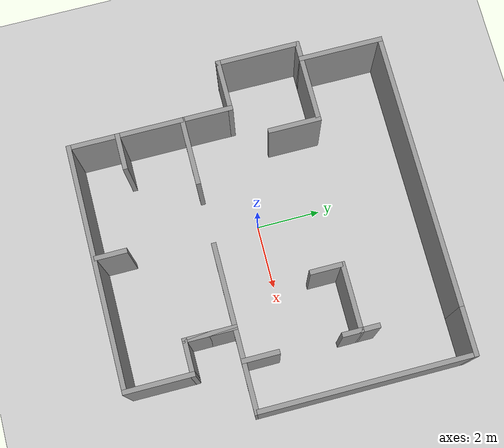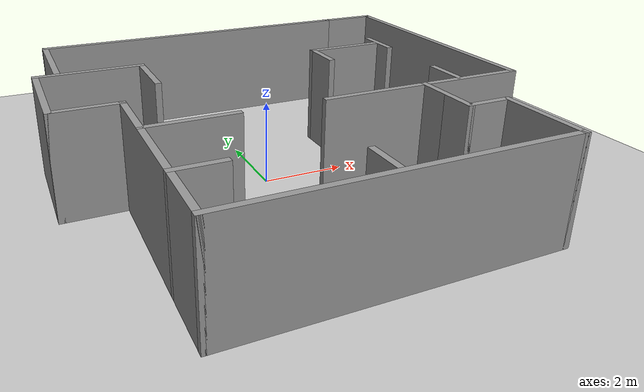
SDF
<sdf version="1.7">
 <world name="default">
  <light name="sun" type="directional">
   <pose>0 0 10 0 -0 0</pose>
   <diffuse>0.8 0.8 0.8 1</diffuse>
   <specular>0.2 0.2 0.2 1</specular>
   <attenuation>
    <range>1000</range>
    <constant>0.9</constant>
    <linear>0.01</linear>
    <quadratic>0.001</quadratic>
   </attenuation>
   <direction>-0.5 0.1 -0.9</direction>
   <spot><inner_angle>0</inner_angle><outer_angle>0</outer_angle><falloff>0</falloff></spot>
  </light>
  <model name="ground_plane">
   <static>1</static>
   <link name="link">
    <collision name="collision">
     <geometry><plane><normal>0 0 1</normal><size>100 100</size></plane></geometry>
     <surface><friction><ode><mu>100</mu><mu2>50</mu2></ode></friction></surface>
    </collision>
    <visual name="visual">
     <cast_shadows>0</cast_shadows>
     <geometry><plane><normal>0 0 1</normal><size>100 100</size></plane></geometry>
     <material>
      <script><uri>file://media/materials/scripts/gazebo.material</uri><name>Gazebo/Grey</name></script>
     </material>
    </visual>
   </link>
  </model>
  <gravity>0 0 -9.8</gravity>
  <magnetic_field>6e-06 2.3e-05 -4.2e-05</magnetic_field>
  <atmosphere type="adiabatic"/>
  <physics type="ode">
   <max_step_size>0.001</max_step_size>
   <real_time_factor>1</real_time_factor>
   <real_time_update_rate>1000</real_time_update_rate>
  </physics>
  <scene><ambient>0.4 0.4 0.4 1</ambient><background>0.7 0.7 0.7 1</background><shadows>1</shadows></scene>
  <spherical_coordinates>
   <surface_model>EARTH_WGS84</surface_model>
   <latitude_deg>0</latitude_deg>
   <longitude_deg>0</longitude_deg>
   <elevation>0</elevation>
   <heading_deg>0</heading_deg>
  </spherical_coordinates>
  <model name="room1">
   <pose>0.5 0 0 0 -0 0</pose>
   <link name="Wall_0">
    <collision name="Wall_0_Collision">
     <geometry><box><size>2.65 0.15 2.5</size></box></geometry>
     <pose>0 0 1.25 0 -0 0</pose>
    </collision>
    <visual name="Wall_0_Visual">
     <pose>0 0 1.25 0 -0 0</pose>
     <geometry><box><size>2.65 0.15 2.5</size></box></geometry>
     <material>
      <script><uri>file://media/materials/scripts/gazebo.material</uri><name>Gazebo/Grey</name></script>
      <ambient>1 1 1 1</ambient>
     </material>
     <meta><layer>0</layer></meta>
    </visual>
    <pose>-5.25 1.25 0 0 -0 1.5708</pose>
   </link>
   <link name="Wall_10">
    <collision name="Wall_10_Collision">
     <geometry><box><size>1.65 0.15 2.5</size></box></geometry>
     <pose>0 0 1.25 0 -0 0</pose>
    </collision>
    <visual name="Wall_10_Visual">
     <pose>0 0 1.25 0 -0 0</pose>
     <geometry><box><size>1.65 0.15 2.5</size></box></geometry>
     <material>
      <script><uri>file://media/materials/scripts/gazebo.material</uri><name>Gazebo/Grey</name></script>
      <ambient>1 1 1 1</ambient>
     </material>
     <meta><layer>0</layer></meta>
    </visual>
    <pose>2.75 -2.25 0 0 -0 1.5708</pose>
   </link>
   <link name="Wall_11">
    <collision name="Wall_11_Collision">
     <geometry><box><size>1.65 0.15 2.5</size></box></geometry>
     <pose>0 0 1.25 0 -0 0</pose>
    </collision>
    <visual name="Wall_11_Visual">
     <pose>0 0 1.25 0 -0 0</pose>
     <geometry><box><size>1.65 0.15 2.5</size></box></geometry>
     <material>
      <script><uri>file://media/materials/scripts/gazebo.material</uri><name>Gazebo/Grey</name></script>
      <ambient>1 1 1 1</ambient>
     </material>
     <meta><layer>0</layer></meta>
    </visual>
    <pose>2.75 -2.25 0 0 -0 -1.5708</pose>
   </link>
   <link name="Wall_13">
    <collision name="Wall_13_Collision">
     <geometry><box><size>1.15 0.15 2.5</size></box></geometry>
     <pose>0 0 1.25 0 -0 0</pose>
    </collision>
    <visual name="Wall_13_Visual">
     <pose>0 0 1.25 0 -0 0</pose>
     <geometry><box><size>1.15 0.15 2.5</size></box></geometry>
     <material>
      <script><uri>file://media/materials/scripts/gazebo.material</uri><name>Gazebo/Grey</name></script>
      <ambient>1 1 1 1</ambient>
     </material>
     <meta><layer>0</layer></meta>
    </visual>
    <pose>3.25 -3 0 0 -0 3.14159</pose>
   </link>
   <link name="Wall_15">
    <collision name="Wall_15_Collision">
     <geometry><box><size>5.15 0.15 2.5</size></box></geometry>
     <pose>0 0 1.25 0 -0 0</pose>
    </collision>
    <visual name="Wall_15_Visual">
     <pose>0 0 1.25 0 -0 0</pose>
     <geometry><box><size>5.15 0.15 2.5</size></box></geometry>
     <material>
      <script><uri>file://media/materials/scripts/gazebo.material</uri><name>Gazebo/Grey</name></script>
      <ambient>1 1 1 1</ambient>
     </material>
     <meta><layer>0</layer></meta>
    </visual>
    <pose>2.75 -1.5 0 0 -0 3.14159</pose>
   </link>
   <link name="Wall_17">
    <collision name="Wall_17_Collision">
     <geometry><box><size>6.5 0.15 2.5</size></box></geometry>
     <pose>0.25 0 1.25 0 -0 0</pose>
    </collision>
    <visual name="Wall_17_Visual">
     <pose>0.25 0 1.25 0 -0 0</pose>
     <geometry><box><size>6.5 0.15 2.5</size></box></geometry>
     <material>
      <script><uri>file://media/materials/scripts/gazebo.material</uri><name>Gazebo/Grey</name></script>
      <ambient>1 1 1 1</ambient>
     </material>
     <meta><layer>0</layer></meta>
    </visual>
    <pose>5.25 1.5 0 0 -0 1.5708</pose>
   </link>
   <link name="Wall_19">
    <collision name="Wall_19_Collision">
     <geometry><box><size>1.65 0.15 2.5</size></box></geometry>
     <pose>0 -0.5 1.25 0 -0 0</pose>
    </collision>
    <visual name="Wall_19_Visual">
     <pose>0 -0.5 1.25 0 -0 0</pose>
     <geometry><box><size>1.65 0.15 2.5</size></box></geometry>
     <material>
      <script><uri>file://media/materials/scripts/gazebo.material</uri><name>Gazebo/Grey</name></script>
      <ambient>1 1 1 1</ambient>
     </material>
     <meta><layer>0</layer></meta>
    </visual>
    <pose>4.5 4.5 0 0 -0 3.14159</pose>
   </link>
   <link name="Wall_2">
    <collision name="Wall_2_Collision">
     <geometry><box><size>1.65 0.15 2.5</size></box></geometry>
     <pose>0 0 1.25 0 -0 0</pose>
    </collision>
    <visual name="Wall_2_Visual">
     <pose>0 0 1.25 0 -0 0</pose>
     <geometry><box><size>1.65 0.15 2.5</size></box></geometry>
     <material>
      <script><uri>file://media/materials/scripts/gazebo.material</uri><name>Gazebo/Grey</name></script>
      <ambient>1 1 1 1</ambient>
     </material>
     <meta><layer>0</layer></meta>
    </visual>
    <pose>-4.5 0 0 0 -0 0</pose>
   </link>
   <link name="Wall_23">
    <collision name="Wall_23_Collision">
     <geometry><box><size>8.65 0.15 2.5</size></box></geometry>
     <pose>0 0 1.25 0 -0 0</pose>
    </collision>
    <visual name="Wall_23_Visual">
     <pose>0 0 1.25 0 -0 0</pose>
     <geometry><box><size>8.65 0.15 2.5</size></box></geometry>
     <material>
      <script><uri>file://media/materials/scripts/gazebo.material</uri><name>Gazebo/Grey</name></script>
      <ambient>1 1 1 1</ambient>
     </material>
     <meta><layer>0</layer></meta>
    </visual>
    <pose>-0.5 5 0 0 -0 3.14159</pose>
   </link>
   <link name="Wall_25">
    <collision name="Wall_25_Collision">
     <geometry><box><size>2.65 0.15 2.5</size></box></geometry>
     <pose>0 0 1.25 0 -0 0</pose>
    </collision>
    <visual name="Wall_25_Visual">
     <pose>0 0 1.25 0 -0 0</pose>
     <geometry><box><size>2.65 0.15 2.5</size></box></geometry>
     <material>
      <script><uri>file://media/materials/scripts/gazebo.material</uri><name>Gazebo/Grey</name></script>
      <ambient>1 1 1 1</ambient>
     </material>
     <meta><layer>0</layer></meta>
    </visual>
    <pose>-4.75 3.75 0 0 -0 -1.5708</pose>
   </link>
   <link name="Wall_27">
    <collision name="Wall_27_Collision">
     <geometry><box><size>2.65 0.15 2.5</size></box></geometry>
     <pose>0 0 1.25 0 -0 0</pose>
    </collision>
    <visual name="Wall_27_Visual">
     <pose>0 0 1.25 0 -0 0</pose>
     <geometry><box><size>2.65 0.15 2.5</size></box></geometry>
     <material>
      <script><uri>file://media/materials/scripts/gazebo.material</uri><name>Gazebo/Grey</name></script>
      <ambient>1 1 1 1</ambient>
     </material>
     <meta><layer>0</layer></meta>
    </visual>
    <pose>-4 2.5 0 0 -0 0</pose>
   </link>
   <link name="Wall_29">
    <collision name="Wall_29_Collision">
     <geometry><box><size>1.65 0.15 2.5</size></box></geometry>
     <pose>0 0 1.25 0 -0 0</pose>
    </collision>
    <visual name="Wall_29_Visual">
     <pose>0 0 1.25 0 -0 0</pose>
     <geometry><box><size>1.65 0.15 2.5</size></box></geometry>
     <material>
      <script><uri>file://media/materials/scripts/gazebo.material</uri><name>Gazebo/Grey</name></script>
      <ambient>1 1 1 1</ambient>
     </material>
     <meta><layer>0</layer></meta>
    </visual>
    <pose>-2.75 1.75 0 0 -0 -1.5708</pose>
   </link>
   <link name="Wall_31">
    <collision name="Wall_31_Collision">
     <geometry><box><size>2.15 0.15 2.5</size></box></geometry>
     <pose>0 0 1.25 0 -0 0</pose>
    </collision>
    <visual name="Wall_31_Visual">
     <pose>0 0 1.25 0 -0 0</pose>
     <geometry><box><size>2.15 0.15 2.5</size></box></geometry>
     <material>
      <script><uri>file://media/materials/scripts/gazebo.material</uri><name>Gazebo/Grey</name></script>
      <ambient>1 1 1 1</ambient>
     </material>
     <meta><layer>0</layer></meta>
    </visual>
    <pose>-2.75 -1.5 0 0 -0 0</pose>
   </link>
   <link name="Wall_33">
    <collision name="Wall_33_Collision">
     <geometry><box><size>1.15 0.15 2.5</size></box></geometry>
     <pose>0 0 1.25 0 -0 0</pose>
    </collision>
    <visual name="Wall_33_Visual">
     <pose>0 0 1.25 0 -0 0</pose>
     <geometry><box><size>1.15 0.15 2.5</size></box></geometry>
     <material>
      <script><uri>file://media/materials/scripts/gazebo.material</uri><name>Gazebo/Grey</name></script>
      <ambient>1 1 1 1</ambient>
     </material>
     <meta><layer>0</layer></meta>
    </visual>
    <pose>-3.25 -3.5 0 0 -0 0</pose>
   </link>
   <link name="Wall_37">
    <collision name="Wall_37_Collision">
     <geometry><box><size>1 0.15 2.5</size></box></geometry>
     <pose>-0.5 0 1.25 0 -0 0</pose>
    </collision>
    <visual name="Wall_37_Visual">
     <pose>-0.5 0 1.25 0 -0 0</pose>
     <geometry><box><size>1 0.15 2.5</size></box></geometry>
     <material>
      <script><uri>file://media/materials/scripts/gazebo.material</uri><name>Gazebo/Grey</name></script>
      <ambient>1 1 1 1</ambient>
     </material>
     <meta><layer>0</layer></meta>
    </visual>
    <pose>-0.25 -4 0 0 -0 1.5708</pose>
   </link>
   <link name="Wall_39">
    <collision name="Wall_39_Collision">
     <geometry><box><size>1.15 0.15 2.5</size></box></geometry>
     <pose>0 0 1.25 0 -0 0</pose>
    </collision>
    <visual name="Wall_39_Visual">
     <pose>0 0 1.25 0 -0 0</pose>
     <geometry><box><size>1.15 0.15 2.5</size></box></geometry>
     <material>
      <script><uri>file://media/materials/scripts/gazebo.material</uri><name>Gazebo/Grey</name></script>
      <ambient>1 1 1 1</ambient>
     </material>
     <meta><layer>0</layer></meta>
    </visual>
    <pose>3.75 -1 0 0 -0 1.5708</pose>
   </link>
   <link name="Wall_4">
    <collision name="Wall_4_Collision">
     <geometry><box><size>5.15 0.15 2.5</size></box></geometry>
     <pose>0 0 1.25 0 -0 0</pose>
    </collision>
    <visual name="Wall_4_Visual">
     <pose>0 0 1.25 0 -0 0</pose>
     <geometry><box><size>5.15 0.15 2.5</size></box></geometry>
     <material>
      <script><uri>file://media/materials/scripts/gazebo.material</uri><name>Gazebo/Grey</name></script>
      <ambient>1 1 1 1</ambient>
     </material>
     <meta><layer>0</layer></meta>
    </visual>
    <pose>-3.75 -2.5 0 0 -0 1.5708</pose>
   </link>
   <link name="Wall_41">
    <collision name="Wall_41_Collision">
     <geometry><box><size>1.15 0.15 2.5</size></box></geometry>
     <pose>0 0 1.25 0 -0 0</pose>
    </collision>
    <visual name="Wall_41_Visual">
     <pose>0 0 1.25 0 -0 0</pose>
     <geometry><box><size>1.15 0.15 2.5</size></box></geometry>
     <material>
      <script><uri>file://media/materials/scripts/gazebo.material</uri><name>Gazebo/Grey</name></script>
      <ambient>1 1 1 1</ambient>
     </material>
     <meta><layer>0</layer></meta>
    </visual>
    <pose>3.75 2 0 0 -0 1.5708</pose>
   </link>
   <link name="Wall_43">
    <collision name="Wall_43_Collision">
     <geometry><box><size>2.15 0.15 2.5</size></box></geometry>
     <pose>0 0 1.25 0 -0 0</pose>
    </collision>
    <visual name="Wall_43_Visual">
     <pose>0 0 1.25 0 -0 0</pose>
     <geometry><box><size>2.15 0.15 2.5</size></box></geometry>
     <material>
      <script><uri>file://media/materials/scripts/gazebo.material</uri><name>Gazebo/Grey</name></script>
      <ambient>1 1 1 1</ambient>
     </material>
     <meta><layer>0</layer></meta>
    </visual>
    <pose>2.75 2 0 0 -0 3.14159</pose>
   </link>
   <link name="Wall_45">
    <collision name="Wall_45_Collision">
     <geometry><box><size>1 0.15 2.5</size></box></geometry>
     <pose>-0.5 0 1.25 0 -0 0</pose>
    </collision>
    <visual name="Wall_45_Visual">
     <pose>-0.5 0 1.25 0 -0 0</pose>
     <geometry><box><size>1 0.15 2.5</size></box></geometry>
     <material>
      <script><uri>file://media/materials/scripts/gazebo.material</uri><name>Gazebo/Grey</name></script>
      <ambient>1 1 1 1</ambient>
     </material>
     <meta><layer>0</layer></meta>
    </visual>
    <pose>1.75 1 0 0 -0 -1.5708</pose>
   </link>
   <link name="Wall_6">
    <collision name="Wall_6_Collision">
     <geometry><box><size>7.65 0.15 2.5</size></box></geometry>
     <pose>0 0 1.25 0 -0 0</pose>
    </collision>
    <visual name="Wall_6_Visual">
     <pose>0 0 1.25 0 -0 0</pose>
     <geometry><box><size>7.65 0.15 2.5</size></box></geometry>
     <material>
      <script><uri>file://media/materials/scripts/gazebo.material</uri><name>Gazebo/Grey</name></script>
      <ambient>1 1 1 1</ambient>
     </material>
     <meta><layer>0</layer></meta>
    </visual>
    <pose>-0 -5 0 0 -0 0</pose>
   </link>
   <link name="Wall_8">
    <collision name="Wall_8_Collision">
     <geometry><box><size>2.15 0.15 2.5</size></box></geometry>
     <pose>0 0 1.25 0 -0 0</pose>
    </collision>
    <visual name="Wall_8_Visual">
     <pose>0 0 1.25 0 -0 0</pose>
     <geometry><box><size>2.15 0.15 2.5</size></box></geometry>
     <material>
      <script><uri>file://media/materials/scripts/gazebo.material</uri><name>Gazebo/Grey</name></script>
      <ambient>1 1 1 1</ambient>
     </material>
     <meta><layer>0</layer></meta>
    </visual>
    <pose>3.75 -4 0 0 -0 1.5708</pose>
   </link>
   <static>1</static>
  </model>
 </world>
</sdf>
